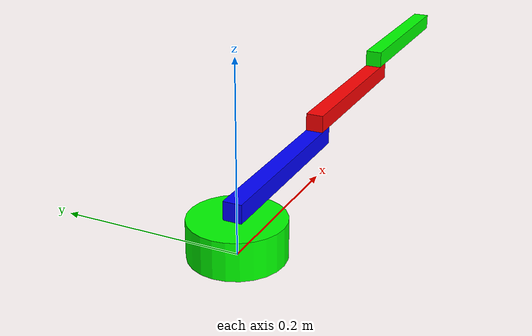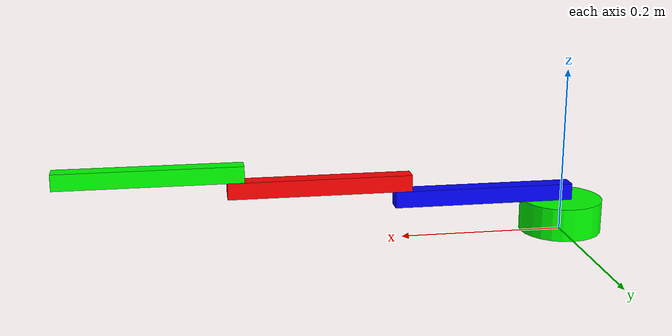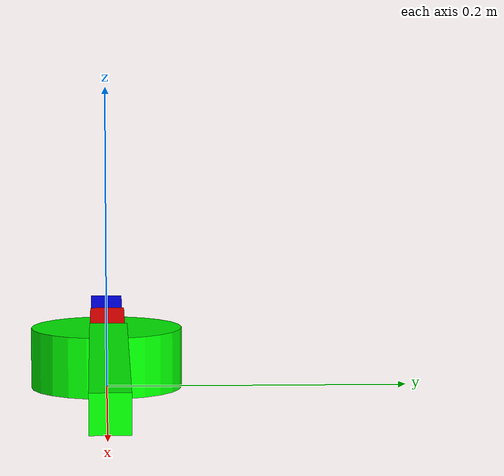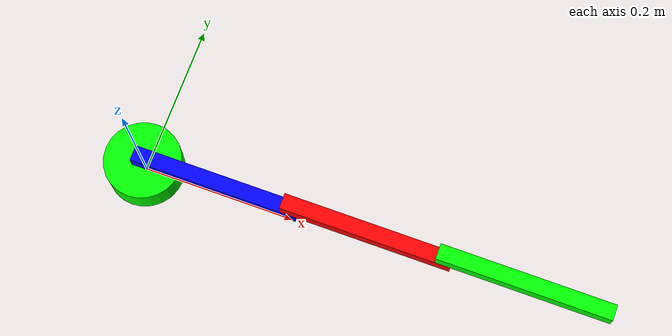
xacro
<?xml version="1.0"?>
<robot name="dp_caos" xmlns:xacro="http://www.ros.org/wiki/xacro">

  <!-- Sobreescribir valores para que no tenga fricción ni limites en los ejes-->
  <xacro:arg name="damping1" default="0.000001"/>              <!-- rozamiento viscoso -->
  <xacro:arg name="friction1" default="0.000001"/>             <!-- rozamiento de Coulomb -->
  <xacro:arg name="damping2" default="0.000001"/>              <!-- rozamiento viscoso -->
  <xacro:arg name="friction2" default="0.000001"/>             <!-- rozamiento de Coulomb -->
  <xacro:arg name="damping3" default="0.000001"/>              <!-- rozamiento viscoso -->
  <xacro:arg name="friction3" default="0.000001"/>             <!-- rozamiento de Coulomb -->

  <xacro:arg name="q1_max" default="3140.0"/>                  <!-- límite físico superior eje 1 -->
  <xacro:arg name="q1_min" default="-3140.0"/>                 <!-- límite físico inferior eje 1 -->
  <xacro:arg name="qp1_max" default="500.0"/>                  <!-- límite físico velocidad eje 1 -->
  <xacro:arg name="tau1_max" default="10000.0"/>               <!-- límite físico del esfuerzo aplicable en eje 1 -->
  <xacro:arg name="q2_max" default="3140.0"/>                  <!-- límite físico superior eje 2 -->
  <xacro:arg name="q2_min" default="-3140.0"/>                 <!-- límite físico inferior eje 2 -->
  <xacro:arg name="qp2_max" default="500.0"/>                  <!-- límite físico velocidad eje 2 -->
  <xacro:arg name="tau2_max" default="10000.0"/>               <!-- límite físico del esfuerzo aplicable en eje 2 -->
  <xacro:arg name="q3_max" default="3140.0"/>                  <!-- límite físico superior eje 3 -->
  <xacro:arg name="q23min" default="-3140.0"/>                 <!-- límite físico inferior eje 3 -->
  <xacro:arg name="qp3_max" default="500.0"/>                  <!-- límite físico velocidad eje 3 -->
  <xacro:arg name="tau3_max" default="10000.0"/>               <!-- límite físico del esfuerzo aplicable en eje 3 -->

  <xacro:arg name="q1_ini" default="1.0"/>                     <!-- condición inicial de posición -->
  <xacro:arg name="q2_ini" default="1.0"/>                     <!-- condición inicial de posición -->
  <xacro:arg name="q3_ini" default="1.0"/>                     <!-- condición inicial de posición -->

  <!-- Incluir el modelo base -->
  <xacro:include filename="$(find dp)/urdf/dp_base.xacro"/>

</robot>

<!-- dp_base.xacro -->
<robot name="double_pendulum" xmlns:xacro="http://www.ros.org/wiki/xacro">

  <!-- Incluimos los parámetros comunes -->
  <xacro:include filename="$(find dp)/urdf/dp_params.xacro"/>
  <xacro:arg name="dp_fixed" default="true"/>    <!--- El robot está fijo al mundo -->

  <!--******************* DEFINICIONES DE ESLABONES  *******************-->
  <xacro:if value="$(arg dp_fixed)">
    <!-- World link -->
    <link name="world"/>
    <!-- Junta fija entre world y base_link -->
    <joint name="fixed" type="fixed">
        <parent link="world"/>
        <child link="base_link"/>
        <origin xyz="0 0 0" rpy="0 0 0"/>
    </joint>
  </xacro:if>

  <!-- Link base (fijo) -->
  <!-- La terna 0 está centrada en la base del cilindro con el Z para arriba  -->
  <link name="base_link">
      <inertial>
        <origin xyz="0 0 ${height0/2.0}"/>
        <mass value="${mass0}"/>
        <inertia ixx="${ixx0}" ixy="0.0" ixz="0.0" iyy="${iyy0}" iyz="0.0" izz="${izz0}"/>
      </inertial>
      <visual>
          <origin xyz="0 0 ${height0/2.0}"/>
          <geometry>
              <cylinder radius="${radius0}" length="${height0}"/>
          </geometry>
          <material name="green">
              <color rgba="0 1 0 1"/>
          </material>
      </visual>
      <collision>
          <origin xyz="0 0 ${height0/2.0}"/>
          <geometry>
              <cylinder radius="${radius0}" length="${height0}"/>
          </geometry>
      </collision>
  </link>

  <!-- Primer eslabón -->
  <!-- La terna 1 está en la entrada del eslabón => DH proximal  -->
  <link name="link1">
      <inertial>
        <origin xyz="${a1/2.0} 0 0"/>
        <mass value="${mass1}"/>
        <inertia ixx="${ixx1}" ixy="0.0" ixz="0.0" iyy="${iyy1}" iyz="0.0" izz="${izz1}"/>
      </inertial>
      <visual>
          <origin xyz="${a1/2.0} 0 0"/>
          <geometry>
              <box size="${length1} ${width1} ${width1}"/>
          </geometry>
          <material name="blue">
              <color rgba="0 0 1 1"/>
          </material>
      </visual>
      <collision>
          <origin xyz="${a1/2.0} 0 0"/>
          <geometry>
              <box size="${length1} ${width1} ${width1}"/>
          </geometry>
      </collision>
  </link>

  <!-- Segundo eslabón -->
  <!-- La terna 2 está en la entrada del eslabón => DH proximal  -->
  <link name="link2">
      <inertial>
          <origin xyz="${a2/2.0} 0 0"/>
          <mass value="${mass2}"/>
          <inertia ixx="${ixx2}" ixy="0.0" ixz="0.0" iyy="${iyy2}" iyz="0.0" izz="${izz2}"/>
      </inertial>
      <visual>
          <origin xyz="${a2/2.0} 0 0"/>
          <geometry>
              <box size="${length2} ${width2} ${width2}"/>
          </geometry>
          <material name="red">
              <color rgba="1 0 0 1"/>
          </material>
      </visual>
      <collision>
          <origin xyz="${a2/2.0} 0 0"/>
          <geometry>
              <box size="${length2} ${width2} ${width2}"/>
          </geometry>
      </collision>
  </link>

  <!-- Tercer eslabón -->
  <!-- La terna 3 está en la entrada del eslabón => DH proximal  -->
  <link name="link3">
      <inertial>
          <origin xyz="${a3/2.0} 0 0"/>
          <mass value="${mass3}"/>
          <inertia ixx="${ixx3}" ixy="0.0" ixz="0.0" iyy="${iyy3}" iyz="0.0" izz="${izz3}"/>
      </inertial>
      <visual>
          <origin xyz="${a3/2.0} 0 0"/>
          <geometry>
              <box size="${length3} ${width3} ${width3}"/>
          </geometry>
          <material name="green">
              <color rgba="0 1 0 1"/>
          </material>
      </visual>
      <collision>
          <origin xyz="${a3/2.0} 0 0"/>
          <geometry>
              <box size="${length3} ${width3} ${width3}"/>
          </geometry>
      </collision>
  </link>

  <!--******************* DEFINICIONES DE JUNTAS  *******************-->
  <!-- Junta entre base y link1 -->
  <joint name="joint1" type="revolute">
      <parent link="base_link"/>
      <child link="link1"/>
      <origin xyz="0 0 ${height0+width1/2.0}" rpy="0 0 0"/>
      <axis xyz="0 0 1"/>
      <limit effort="$(arg tau1_max)" lower="$(arg q1_min)" upper="$(arg q1_max)" velocity="$(arg qp1_max)"/>
      <dynamics damping="$(arg damping1)" friction="$(arg friction1)"/>
  </joint>

  <!-- Junta entre link1 y link2 -->
  <joint name="joint2" type="revolute">
      <parent link="link1"/>
      <child link="link2"/>
      <origin xyz="${a2} 0 ${width2}" rpy="0 0 0"/>
      <axis xyz="0 0 1"/>
      <limit effort="$(arg tau2_max)" lower="$(arg q2_min)" upper="$(arg q2_max)" velocity="$(arg qp2_max)"/>
      <dynamics damping="$(arg damping2)" friction="$(arg friction2)"/>
  </joint>

   <!-- Junta entre link2 y link3 -->
  <joint name="joint3" type="revolute">
      <parent link="link2"/>
      <child link="link3"/>
      <origin xyz="${a3} 0 ${width3}" rpy="0 0 0"/>
      <axis xyz="0 0 1"/>
      <limit effort="$(arg tau3_max)" lower="$(arg q3_min)" upper="$(arg q3_max)" velocity="$(arg qp3_max)"/>
      <dynamics damping="$(arg damping3)" friction="$(arg friction3)"/>
  </joint>

  <!--******************* DEFINICIONES DE HERRAMIENTA  *******************-->
  <!-- Terna TOOL0 en el extremo de link2 -->
  <joint name="tool0_joint" type="fixed">
    <parent link="link3"/>
    <child link="tool0"/>
    <origin xyz="${a2} 0 0" rpy="0 0 0"/>
  </joint>

  <link name="tool0"/>

  <!--******************* CONFIGURACION DE la transmisión a fines de documentación ******************* -->
  <!-- La transmisión está fuera del lazo tan solo para que se vea un topic con la velocidad del motor -->
  <!-- Para que quede adentro del lazo hay que cambiar el tipo de controlador -->
  <transmission name="motor1_transmission">
    <type>transmission_interface/SimpleTransmission</type>
    <actuator name="motor1_actuator">
      <mechanicalReduction>${N1}</mechanicalReduction>
    </actuator>
    <joint name="joint1">
      <hardwareInterface>hardware_interface/PositionJointInterface</hardwareInterface>
    </joint>
  </transmission>
  <transmission name="motor2_transmission">
    <type>transmission_interface/SimpleTransmission</type>
    <actuator name="motor2_actuator">
      <mechanicalReduction>${N2}</mechanicalReduction>
    </actuator>
    <joint name="joint2">
      <hardwareInterface>hardware_interface/PositionJointInterface</hardwareInterface>
    </joint>
  </transmission>
  <transmission name="motor3_transmission">
    <type>transmission_interface/SimpleTransmission</type>
    <actuator name="motor3_actuator">
      <mechanicalReduction>${N2}</mechanicalReduction>
    </actuator>
    <joint name="joint3">
      <hardwareInterface>hardware_interface/PositionJointInterface</hardwareInterface>
    </joint>
  </transmission>

  <!--******************* CONFIGURACION DE ros2_control *******************-->
  <ros2_control name="GazeboSystem" type="system">
    <hardware>
      <plugin>gz_ros2_control/GazeboSimSystem</plugin>
    </hardware>
    <joint name="joint1">
      <command_interface name="position">
        <param name="min">-3.14</param>
        <param name="max">3.14</param>
      </command_interface>
      <command_interface name="effort">
        <param name="min">-100</param>
        <param name="max">100</param>
      </command_interface>
      <state_interface name="position">
        <param name="initial_value">$(arg q1_ini)</param>
      </state_interface>
      <state_interface name="velocity"/>
      <state_interface name="effort"/>
    </joint>

    <joint name="joint2">
      <command_interface name="position">
        <param name="min">-3.14</param>
        <param name="max">3.14</param>
      </command_interface>
      <command_interface name="effort">
        <param name="min">-100</param>
        <param name="max">100</param>
      </command_interface>
      <state_interface name="position">
        <param name="initial_value">$(arg q2_ini)</param>
      </state_interface>
      <state_interface name="velocity"/>
      <state_interface name="effort"/>
    </joint>

    <joint name="joint3">
      <command_interface name="position">
        <param name="min">-3.14</param>
        <param name="max">3.14</param>
      </command_interface>
      <command_interface name="effort">
        <param name="min">-100</param>
        <param name="max">100</param>
      </command_interface>
      <state_interface name="position">
        <param name="initial_value">$(arg q2_ini)</param>
      </state_interface>
      <state_interface name="velocity"/>
      <state_interface name="effort"/>
    </joint>
  </ros2_control>

  <!-- ros_control plugin -->
  <gazebo>
    <plugin filename="gz_ros2_control-system" name="gz_ros2_control::GazeboSimROS2ControlPlugin">
      <parameters>$(find dp)/config/ros2_controllers.yaml</parameters>
      <robot_param>robot_description</robot_param>
      <robot_param_node>robot_state_publisher</robot_param_node>
    </plugin>
  </gazebo>
</robot>

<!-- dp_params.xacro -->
<robot xmlns:xacro="http://www.ros.org/wiki/xacro">

  <!-- Parámetros del eslabón 0. Cilindro y centro de masa en el centro -->
  <xacro:property name="mass0" value="1.5"/>
  <xacro:property name="radius0" value="0.05"/> <!-- largo total -->
  <xacro:property name="height0" value="0.04"/>

  <!-- Inercia para orientación: alto sobre el eje Z -->
  <!-- Inercia del cilindro, eje Z a lo largo de la altura -->
  <xacro:property name="ixx0" value="${(1.0/12.0) * mass0 * (3 * radius0 * radius0 + height0 * height0)}"/>
  <xacro:property name="iyy0" value="${ixx0}"/>
  <xacro:property name="izz0" value="${0.5 * mass0 * radius0 * radius0}"/>

  <!-- Parámetros del eslabón 1. Prisma de sección cuadrada y centro de masa en el centro -->
  <xacro:property name="mass1" value="1.5"/>                    <!-- masa de la barra que modela el eslabón -->
  <xacro:property name="length1" value="0.22"/>                 <!-- largo total -->
  <xacro:property name="width1" value="0.02"/>                  <!-- ancho de la sección total -->
  <xacro:property name="a1" value="${length1 - width1}"/>       <!-- distancia entre ejes -->
  <xacro:property name="Jm1" value="0.0001"/>                   <!-- inercia del rotor del motor -->
  <xacro:property name="N1"  value="10"/>                       <!-- relación de transmisión -->
  <xacro:property name="Jm1_ef" value="${N1*N1 * Jm1}"/>        <!-- inercia del rotor reflejada al eje -->

  <!-- Calculo de la inercia de una barra (con motor en eje de rotación) para orientación a lo largo del eje X -->
  <xacro:property name="ixx1" value="${(1.0/6.0) * mass1 * (width1 * width1)}"/>
  <xacro:property name="izz1" value="${(1.0/12.0) * mass1 * (length1 * length1 + width1 * width1) + Jm1_ef}"/> <!-- super simplificación a fines didácticos -->
  <xacro:property name="iyy1" value="${izz1}"/>

  <!-- Parámetros del eslabón 2. Prisma de sección cuadrada y centro de masa en el centro -->
  <xacro:property name="mass2" value="1.5"/>                    <!-- masa de la barra que modela el eslabón -->
  <xacro:property name="length2" value="0.22"/>                 <!-- largo total -->
  <xacro:property name="width2" value="0.02"/>                  <!-- ancho de la sección total -->
  <xacro:property name="a2" value="${length2 - width2}"/>       <!-- distancia entre ejes -->
  <xacro:property name="Jm2" value="0.0001"/>                   <!-- inercia del rotor del motor -->
  <xacro:property name="N2"  value="10"/>                       <!-- relación de transmisión -->
  <xacro:property name="Jm2_ef" value="${N2*N2 * Jm2}"/>        <!-- inercia del rotor reflejada al eje -->

  <!-- Calculo de la inercia de una barra (con motor en eje de rotación) para orientación a lo largo del eje X -->
  <xacro:property name="ixx2" value="${(1.0/6.0) * mass2 * (width2 * width2)}"/>
  <xacro:property name="izz2" value="${(1.0/12.0) * mass2 * (length2 * length2 + width2 * width2) + Jm2_ef}"/> <!-- super simplificación a fines didácticos -->
  <xacro:property name="iyy2" value="${izz2}"/>

 <!-- Parámetros del eslabón 3. Prisma de sección cuadrada y centro de masa en el centro -->
  <xacro:property name="mass3" value="1.5"/>                    <!-- masa de la barra que modela el eslabón -->
  <xacro:property name="length3" value="0.22"/>                 <!-- largo total -->
  <xacro:property name="width3" value="0.02"/>                  <!-- ancho de la sección total -->
  <xacro:property name="a3" value="${length3 - width3}"/>       <!-- distancia entre ejes -->
  <xacro:property name="Jm3" value="0.0001"/>                   <!-- inercia del rotor del motor -->
  <xacro:property name="N3"  value="10"/>                       <!-- relación de transmisión -->
  <xacro:property name="Jm3_ef" value="${N3*N3 * Jm3}"/>        <!-- inercia del rotor reflejada al eje -->

  <!-- Calculo de la inercia de una barra (con motor en eje de rotación) para orientación a lo largo del eje X -->
  <xacro:property name="ixx3" value="${(1.0/6.0) * mass3 * (width3 * width3)}"/>
  <xacro:property name="izz3" value="${(1.0/12.0) * mass3 * (length3 * length3 + width3 * width3) + Jm3_ef}"/> <!-- super simplificación a fines didácticos -->
  <xacro:property name="iyy3" value="${izz3}"/>
  <!-- Valores que pueden modificarse en otros archivos xacro y que funcionan como argumentos -->
  <xacro:arg name="damping1" default="0.1"/>                 <!-- rozamiento viscoso -->
  <xacro:arg name="friction1" default="0.01"/>               <!-- rozamiento de Coulomb -->
  <xacro:arg name="damping2" default="0.1"/>                 <!-- rozamiento viscoso -->
  <xacro:arg name="friction2" default="0.01"/>               <!-- rozamiento de Coulomb -->
  <xacro:arg name="damping3" default="0.1"/>                 <!-- rozamiento viscoso -->
  <xacro:arg name="friction3" default="0.01"/>               <!-- rozamiento de Coulomb -->

  <xacro:arg name="q1_max" default="3.14"/>                  <!-- límite físico superior eje 1 -->
  <xacro:arg name="q1_min" default="-3.14"/>                 <!-- límite físico inferior eje 1 -->
  <xacro:arg name="qp1_max" default="5.0"/>                  <!-- límite físico velocidad eje 1 -->
  <xacro:arg name="tau1_max" default="100.0"/>               <!-- límite físico del esfuerzo aplicable en eje 1 -->
  <xacro:arg name="q2_max" default="3.14"/>                  <!-- límite físico superior eje 2 -->
  <xacro:arg name="q2_min" default="-3.14"/>                 <!-- límite físico inferior eje 2 -->
  <xacro:arg name="qp2_max" default="5.0"/>                  <!-- límite físico velocidad eje 2 -->
  <xacro:arg name="tau2_max" default="100.0"/>               <!-- límite físico del esfuerzo aplicable en eje 2 -->
  <xacro:arg name="q3_max" default="3.14"/>                  <!-- límite físico superior eje 3 -->
  <xacro:arg name="q3_min" default="-3.14"/>                 <!-- límite físico inferior eje 3 -->
  <xacro:arg name="qp3_max" default="5.0"/>                  <!-- límite físico velocidad eje 3 -->
  <xacro:arg name="tau3_max" default="100.0"/>               <!-- límite físico del esfuerzo aplicable en eje 3 -->

  <xacro:arg name="q1_ini" default="1.0"/>                   <!-- condición inicial de posición -->
  <xacro:arg name="q2_ini" default="1.0"/>                   <!-- condición inicial de posición -->
  <xacro:arg name="q3_ini" default="1.0"/>                   <!-- condición inicial de posición -->
</robot>
